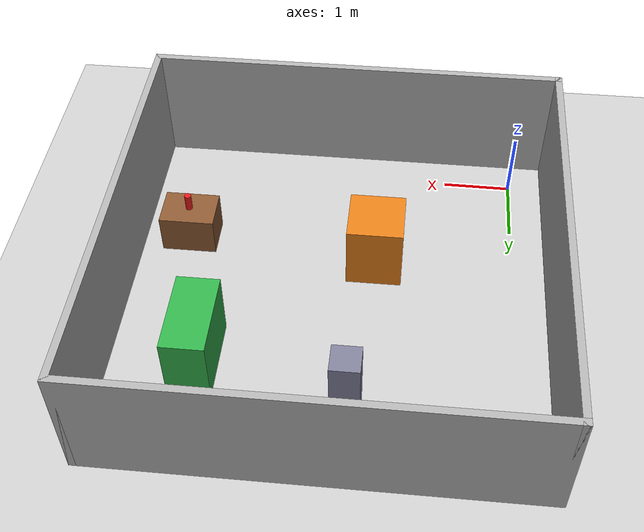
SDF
<?xml version="1.0" ?>

<sdf version="1.9">

    <world name="empty_world">

        <physics name="1ms" type="ignored">
            <max_step_size>0.001</max_step_size>
            <real_time_factor>1.0</real_time_factor>
        </physics>

        <plugin
            filename="gz-sim-physics-system"
            name="gz::sim::systems::Physics"/>

        <plugin
            filename="gz-sim-user-commands-system"
            name="gz::sim::systems::UserCommands"/>

        <plugin
            filename="gz-sim-scene-broadcaster-system"
            name="gz::sim::systems::SceneBroadcaster"/>

        <plugin
            filename="gz-sim-imu-system"
            name="gz::sim::systems::Imu"/>

        <plugin
            filename="gz-sim-sensors-system"
            name="gz::sim::systems::Sensors">
    <render_engine>ogre2</render_engine>
</plugin>

        <!-- 太阳 -->
        <light type="directional" name="sun">

            <cast_shadows>true</cast_shadows>

            <pose>0 0 10 0 0 0</pose>

            <diffuse>0.8 0.8 0.8 1</diffuse>

            <specular>0.2 0.2 0.2 1</specular>

            <direction>-0.5 0.1 -0.9</direction>

        </light>

        <!-- 地面 -->
        <model name="ground_plane">

            <static>true</static>

            <link name="link">

                <collision name="collision">

                    <geometry>

                        <plane>
                            <normal>0 0 1</normal>
                            <size>100 100</size>
                        </plane>

                    </geometry>

                </collision>

                <visual name="visual">

                    <geometry>

                        <plane>
                            <normal>0 0 1</normal>
                            <size>100 100</size>
                        </plane>

                    </geometry>

                </visual>

            </link>

        </model>

        <!-- 四面墙：房间内部 x,y ∈ [-0.5, 5.5]，约 6m x 6m -->
        <!-- 墙厚 0.1m，高 1.8m，机器人 spawn (0,0) 距墙 0.5m -->

        <!-- 南墙 -->
        <model name="wall_south">

            <static>true</static>

            <pose>2.5 -0.55 0.9 0 0 0</pose>

            <link name="link">

                <collision name="collision">
                    <geometry>
                        <box>
                            <size>6.2 0.1 1.8</size>
                        </box>
                    </geometry>
                </collision>

                <visual name="visual">
                    <geometry>
                        <box>
                            <size>6.2 0.1 1.8</size>
                        </box>
                    </geometry>
                    <material>
                        <ambient>0.7 0.7 0.7 1</ambient>
                        <diffuse>0.7 0.7 0.7 1</diffuse>
                    </material>
                </visual>

            </link>

        </model>

        <!-- 北墙 -->
        <model name="wall_north">

            <static>true</static>

            <pose>2.5 5.55 0.9 0 0 0</pose>

            <link name="link">

                <collision name="collision">
                    <geometry>
                        <box>
                            <size>6.2 0.1 1.8</size>
                        </box>
                    </geometry>
                </collision>

                <visual name="visual">
                    <geometry>
                        <box>
                            <size>6.2 0.1 1.8</size>
                        </box>
                    </geometry>
                    <material>
                        <ambient>0.7 0.7 0.7 1</ambient>
                        <diffuse>0.7 0.7 0.7 1</diffuse>
                    </material>
                </visual>

            </link>

        </model>

        <!-- 西墙 -->
        <model name="wall_west">

            <static>true</static>

            <pose>-0.55 2.5 0.9 0 0 0</pose>

            <link name="link">

                <collision name="collision">
                    <geometry>
                        <box>
                            <size>0.1 6.2 1.8</size>
                        </box>
                    </geometry>
                </collision>

                <visual name="visual">
                    <geometry>
                        <box>
                            <size>0.1 6.2 1.8</size>
                        </box>
                    </geometry>
                    <material>
                        <ambient>0.7 0.7 0.7 1</ambient>
                        <diffuse>0.7 0.7 0.7 1</diffuse>
                    </material>
                </visual>

            </link>

        </model>

        <!-- 东墙 -->
        <model name="wall_east">

            <static>true</static>

            <pose>5.55 2.5 0.9 0 0 0</pose>

            <link name="link">

                <collision name="collision">
                    <geometry>
                        <box>
                            <size>0.1 6.2 1.8</size>
                        </box>
                    </geometry>
                </collision>

                <visual name="visual">
                    <geometry>
                        <box>
                            <size>0.1 6.2 1.8</size>
                        </box>
                    </geometry>
                    <material>
                        <ambient>0.7 0.7 0.7 1</ambient>
                        <diffuse>0.7 0.7 0.7 1</diffuse>
                    </material>
                </visual>

            </link>

        </model>

        <!-- 障碍物1 -->
        <model name="box_obstacle_1">

            <static>true</static>

            <pose>2.0 1.8 0.5 0 0 0</pose>

            <link name="link">

                <collision name="collision">
                    <geometry>
                        <box>
                            <size>0.8 0.8 1.0</size>
                        </box>
                    </geometry>
                </collision>

                <visual name="visual">
                    <geometry>
                        <box>
                            <size>0.8 0.8 1.0</size>
                        </box>
                    </geometry>
                    <material>
                        <ambient>0.9 0.5 0.1 1</ambient>
                        <diffuse>0.9 0.5 0.1 1</diffuse>
                    </material>
                </visual>

            </link>

        </model>

        <!-- 障碍物2 -->
        <model name="box_obstacle_2">

            <static>true</static>

            <pose>4.3 3.8 0.5 0 0 0</pose>

            <link name="link">

                <collision name="collision">
                    <geometry>
                        <box>
                            <size>0.6 1.2 1.0</size>
                        </box>
                    </geometry>
                </collision>

                <visual name="visual">
                    <geometry>
                        <box>
                            <size>0.6 1.2 1.0</size>
                        </box>
                    </geometry>
                    <material>
                        <ambient>0.2 0.7 0.3 1</ambient>
                        <diffuse>0.2 0.7 0.3 1</diffuse>
                    </material>
                </visual>

            </link>

        </model>

        <!-- 柱子 -->
        <model name="pillar">

            <static>true</static>

            <pose>2.2 4.5 0.6 0 0 0</pose>

            <link name="link">

                <collision name="collision">
                    <geometry>
                        <box>
                            <size>0.4 0.4 1.2</size>
                        </box>
                    </geometry>
                </collision>

                <visual name="visual">
                    <geometry>
                        <box>
                            <size>0.4 0.4 1.2</size>
                        </box>
                    </geometry>
                    <material>
                        <ambient>0.5 0.5 0.6 1</ambient>
                        <diffuse>0.5 0.5 0.6 1</diffuse>
                    </material>
                </visual>

            </link>

        </model>

        <!-- 低台子：顶面高度 z = 0.3 + 0.6/2 = 0.6m -->
        <model name="low_table">

            <static>true</static>

            <pose>4.8 1.5 0.3 0 0 0</pose>

            <link name="link">

                <collision name="collision">
                    <geometry>
                        <box>
                            <size>0.8 0.6 0.6</size>
                        </box>
                    </geometry>
                </collision>

                <visual name="visual">
                    <geometry>
                        <box>
                            <size>0.8 0.6 0.6</size>
                        </box>
                    </geometry>
                    <material>
                        <ambient>0.55 0.35 0.2 1</ambient>
                        <diffuse>0.55 0.35 0.2 1</diffuse>
                    </material>
                </visual>

            </link>

        </model>

        <!-- 瓶子1：放在低台子顶部，z = 0.6 + 0.25/2 = 0.725（红色） -->
        <model name="bottle_1">

            <static>true</static>

            <pose>4.8 1.5 0.725 0 0 0</pose>

            <link name="link">

                <collision name="collision">
                    <geometry>
                        <cylinder>
                            <radius>0.05</radius>
                            <length>0.25</length>
                        </cylinder>
                    </geometry>
                </collision>

                <visual name="visual">
                    <geometry>
                        <cylinder>
                            <radius>0.05</radius>
                            <length>0.25</length>
                        </cylinder>
                    </geometry>
                    <material>
                        <ambient>0.9 0.1 0.1 1</ambient>
                        <diffuse>0.9 0.1 0.1 1</diffuse>
                        <specular>0.5 0.5 0.5 1</specular>
                    </material>
                </visual>

            </link>

        </model>

        <!-- 瓶子2：放在地面，z = 0.25/2 = 0.125（蓝色） -->
        <model name="bottle_2">

            <static>true</static>

            <pose>4.8 4.8 0.125 0 0 0</pose>

            <link name="link">

                <collision name="collision">
                    <geometry>
                        <cylinder>
                            <radius>0.05</radius>
                            <length>0.25</length>
                        </cylinder>
                    </geometry>
                </collision>

                <visual name="visual">
                    <geometry>
                        <cylinder>
                            <radius>0.05</radius>
                            <length>0.25</length>
                        </cylinder>
                    </geometry>
                    <material>
                        <ambient>0.1 0.2 0.9 1</ambient>
                        <diffuse>0.1 0.2 0.9 1</diffuse>
                        <specular>0.5 0.5 0.5 1</specular>
                    </material>
                </visual>

            </link>

        </model>

    </world>

</sdf>
